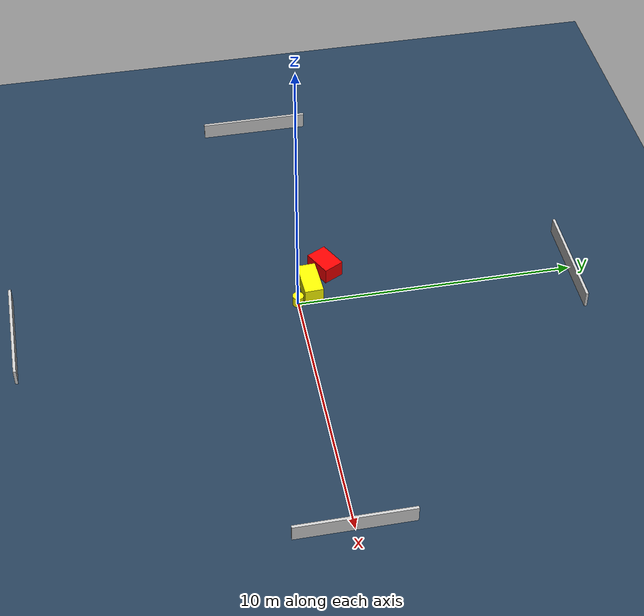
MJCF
<?xml version="1.0" ?>
<mujoco model="generated_environment">
  <option timestep="0.01" integrator="RK4" cone="elliptic"/>
  <default>
    <geom density="1"/>
  </default>
  <asset>
    <texture builtin="gradient" height="3072" name="skybox" rgb1="0.3 0.5 0.7" rgb2="0 0 0" type="skybox" width="512"/>
    <texture builtin="checker" height="300" name="groundplane" rgb1="0.2 0.3 0.4" rgb2="0.1 0.2 0.3" type="2d" width="300"/>
    <material name="groundplane" reflectance="0.2" texrepeat="5 5" texture="groundplane"/>
  </asset>
  <worldbody>
    <light dir="0 0 -1" directional="true" pos="0 0 1.5"/>
    <geom condim="3" friction="0.5 0.005 0.001" material="groundplane" name="floor" pos="0 0 0" size="0 0 0.05" type="plane"/>
    <body name="walls">
      <geom name="wall_1" condim="4" pos="-10.0 0.0 0.3" rgba="0.800000011920929 0.800000011920929 0.800000011920929 1.0" size="0.05 2.0 0.3" type="box"/>
      <geom name="wall_2" condim="4" pos="10.0 0.0 0.3" rgba="0.800000011920929 0.800000011920929 0.800000011920929 1.0" size="0.05 2.0 0.3" type="box"/>
      <geom name="wall_3" condim="4" pos="0.0 -10.0 0.3" rgba="0.800000011920929 0.800000011920929 0.800000011920929 1.0" size="2.0 0.05 0.3" type="box"/>
      <geom name="wall_4" condim="4" pos="0.0 10.0 0.3" rgba="0.800000011920929 0.800000011920929 0.800000011920929 1.0" size="2.0 0.05 0.3" type="box"/>
    </body>
    <body name="robot">
      <joint name="joint_x" type="slide" pos="0 0 0" axis="1 0 0"/>
      <joint name="joint_y" type="slide" pos="0 0 0" axis="0 1 0"/>
      <geom name="robot" type="cylinder" pos="0.0 0.0 0.2" size="0.2 0.2 0.0" mass="5.0" friction="1.0 0.005 0.0001" condim="4" rgba="1.0 1.0 0.0 1.0"/>
    </body>
    <body name="obstacle_1_movable">
      <geom name="obstacle_1_movable" condim="4" pos="-0.6253189860830654 0.5459407670284376 0.3" euler="0 0 92.31496689321166" friction="0.0 0.005 0.001" rgba="1.0 1.0 0.0 1.0" size="0.3370659117912719 0.6890591297354549 0.3" type="box" mass="0.1"/>
      <joint type="free"/>
    </body>
    <body name="obstacle_2_static">
      <geom name="obstacle_2_static" condim="4" pos="-1.4895247157604874 1.2503027301389265 0.3" euler="0 0 27.65918111089419" friction="0.0 0.005 0.001" rgba="1.0 0.0 0.0 1.0" size="0.5269799804236539 0.3801152765515393 0.3" type="box"/>
    </body>
  </worldbody>
  <actuator>
    <motor name="actuator_x" joint="joint_x" gear="1" ctrlrange="-1 1"/>
    <motor name="actuator_y" joint="joint_y" gear="1" ctrlrange="-1 1"/>
  </actuator>
</mujoco>
